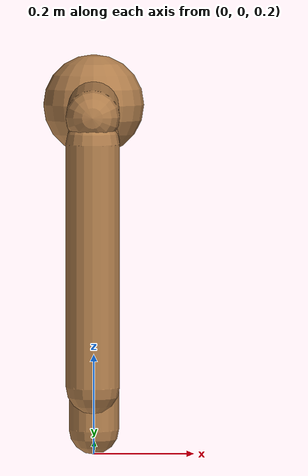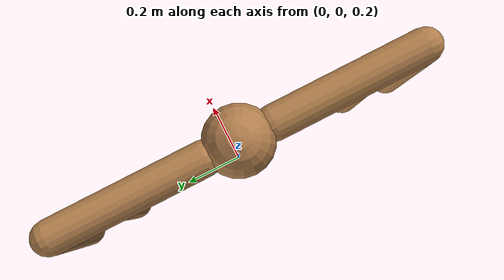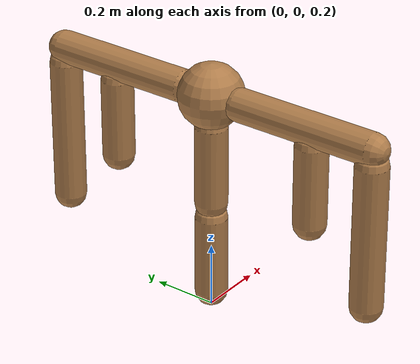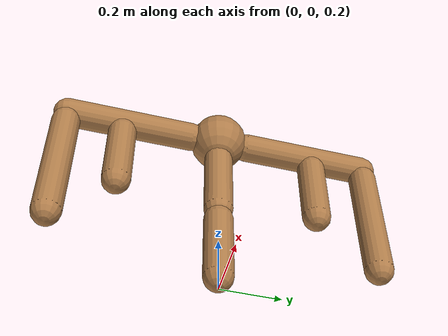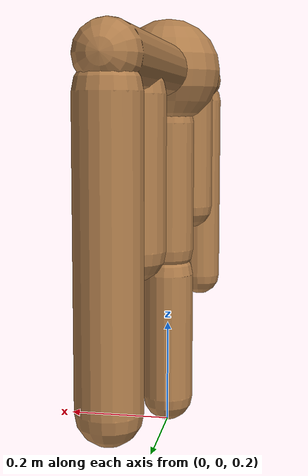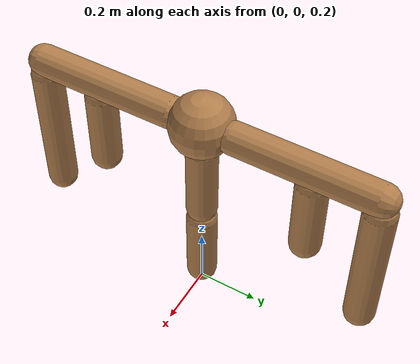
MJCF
<?xml version='1.0' encoding='UTF-8'?>
<!-- Universal Animal Template: unimal -->
<mujoco model="unimal">
  <compiler angle="degree"/>
  <size njmax="2000" nconmax="500"/>
  <option timestep=".005">
    <flag filterparent="disable"/>
  </option>
  <!-- Common defaults to make search space tractable -->
  <default>
    <!-- Define motor defaults -->
    <motor ctrlrange="-1 1" ctrllimited="true"/>
    <!-- Define joint defaults -->
    <default class="normal_joint">
      <joint type="hinge" damping="1" stiffness="1" armature="1" limited="true" range="-120 120" solimplimit="0 0.99 0.01"/>
    </default>
    <default class="walker_joint">
      <joint type="hinge" damping="0.2" stiffness="1" armature=".01" limited="true" range="-120 120" solimplimit="0 0.99 0.01"/>
    </default>
    <default class="stiff_joint">
      <joint type="hinge" damping="5" stiffness="10" armature=".01" limited="true" solimplimit="0 0.99 0.01"/>
    </default>
    <default class="free">
      <joint limited="false" damping="0" armature="0" stiffness="0"/>
    </default>
    <default class="growth_site">
      <site size="1e-6 1e-6 1e-6"/>
    </default>
    <default class="torso_growth_site">
      <site size="1e-6 1e-6 1e-6"/>
    </default>
    <default class="mirror_growth_site">
      <site size="1e-6 1e-6 1e-6"/>
    </default>
    <default class="btm_pos_site">
      <site size="1e-6 1e-6 1e-6"/>
    </default>
    <default class="box_face_site">
      <site size="1e-6 1e-6 1e-6"/>
    </default>
    <default class="imu_vel">
      <site type="box" size="0.05" rgba="1 0 0 0"/>
    </default>
    <default class="touch_site">
      <site group="3" rgba="0 0 1 .3"/>
    </default>
    <default class="food_site">
      <site material="food" size="0.15"/>
    </default>
    <!-- Define geom defaults -->
    <geom type="capsule" condim="3" friction="0.7 0.1 0.1" material="self"/>
  </default>
  <worldbody>
    <light diffuse="1 1 1" directional="true" exponent="1" pos="0 0 8" specular="0.1 0.1 0.1" dir="0 0 -1"/>
    <!-- Programatically generated xml goes here -->
    <body name="torso/0" pos="0 0 0.9">
      <joint name="root" type="free" class="free"/>
      <site name="root" class="imu_vel"/>
      <geom name="torso/0" type="sphere" size="0.1" condim="3" density="800"/>
      <camera name="side" pos="0 -7 2" xyaxes="1 0 0 0 1 2" mode="trackcom"/>
      <site name="torso/0" class="growth_site" pos="0 0 0"/>
      <site name="torso/btm_pos/0" class="btm_pos_site" pos="0 0 -0.1"/>
      <site name="torso/touch/0" class="touch_site" size="0.11"/>
      <site name="torso/horizontal_y/0" class="torso_growth_site" pos="-0.1 0 0"/>
      <body name="limb/0" pos="0.0 0.0 -0.1">
        <joint name="limby/0" type="hinge" class="normal_joint" range="-30 30" pos="0.0 0.0 0.05" axis="0.0 1.0 0.0"/>
        <geom name="limb/0" type="capsule" fromto="0.0 0.0 0.0 0.0 0.0 -0.25" size="0.05" density="700"/>
        <site name="limb/mid/0" class="growth_site" pos="0.0 0.0 -0.15"/>
        <site name="limb/btm/0" class="growth_site" pos="0.0 0.0 -0.25"/>
        <site name="limb/btm_pos/0" class="btm_pos_site" pos="0.0 0.0 -0.25"/>
        <site name="limb/touch/0" class="touch_site" size="0.060000000000000005" fromto="0.0 0.0 0.0 0.0 0.0 -0.25" type="capsule"/>
        <body name="limb/25" pos="0.0 0.0 -0.3">
          <joint name="limbx/25" type="hinge" class="normal_joint" range="-60 60" pos="0.0 0.0 0.05" axis="1.0 0.0 0.0"/>
          <joint name="limby/25" type="hinge" class="normal_joint" range="0 60" pos="0.0 0.0 0.05" axis="0.0 1.0 0.0"/>
          <geom name="limb/25" type="capsule" fromto="0.0 0.0 0.0 0.0 0.0 -0.25" size="0.05" density="700"/>
          <site name="limb/mid/25" class="growth_site" pos="0.0 0.0 -0.15"/>
          <site name="limb/btm/25" class="growth_site" pos="0.0 0.0 -0.25"/>
          <site name="limb/btm_pos/25" class="btm_pos_site" pos="0.0 0.0 -0.3"/>
          <site name="limb/touch/25" class="touch_site" size="0.060000000000000005" fromto="0.0 0.0 0.0 0.0 0.0 -0.25" type="capsule"/>
        </body>
      </body>
      <body name="limb/22" pos="0.0 0.1 0.0">
        <joint name="limby/22" type="hinge" class="normal_joint" range="-45 45" pos="0.0 -0.05 0.0" axis="0.0 0.0 1.0"/>
        <geom name="limb/22" type="capsule" fromto="0.0 0.0 0.0 0.0 0.45 0.0" size="0.05" density="700"/>
        <site name="limb/mid/22" class="mirror_growth_site" pos="0.0 0.25 0.0"/>
        <site name="limb/btm/22" class="mirror_growth_site" pos="0.0 0.45 0.0"/>
        <site name="limb/btm_pos/22" class="btm_pos_site" pos="0.0 0.5 0.0"/>
        <site name="limb/touch/22" class="touch_site" size="0.060000000000000005" fromto="0.0 0.0 0.0 0.0 0.45 0.0" type="capsule"/>
        <body name="limb/26" pos="0.0 0.25 -0.05">
          <joint name="limbx/26" type="hinge" class="normal_joint" range="-60 60" pos="0.0 0.0 0.05" axis="1.0 0.0 0.0"/>
          <geom name="limb/26" type="capsule" fromto="0.0 0.0 0.0 0.0 0.0 -0.25" size="0.05" density="700"/>
          <site name="limb/mid/26" class="mirror_growth_site" pos="0.0 0.0 -0.15"/>
          <site name="limb/btm/26" class="mirror_growth_site" pos="0.0 0.0 -0.25"/>
          <site name="limb/btm_pos/26" class="btm_pos_site" pos="0.0 0.0 -0.3"/>
          <site name="limb/touch/26" class="touch_site" size="0.060000000000000005" fromto="0.0 0.0 0.0 0.0 0.0 -0.25" type="capsule"/>
        </body>
        <body name="limb/28" pos="0.0 0.45 -0.05">
          <joint name="limby/28" type="hinge" class="normal_joint" range="-60 60" pos="0.0 0.0 0.05" axis="0.0 1.0 0.0"/>
          <geom name="limb/28" type="capsule" fromto="0.0 0.0 0.0 0.0 0.0 -0.45" size="0.05" density="700"/>
          <site name="limb/mid/28" class="mirror_growth_site" pos="0.0 0.0 -0.25"/>
          <site name="limb/btm/28" class="mirror_growth_site" pos="0.0 0.0 -0.45"/>
          <site name="limb/btm_pos/28" class="btm_pos_site" pos="0.0 0.0 -0.5"/>
          <site name="limb/touch/28" class="touch_site" size="0.060000000000000005" fromto="0.0 0.0 0.0 0.0 0.0 -0.45" type="capsule"/>
        </body>
      </body>
      <body name="limb/23" pos="0.0 -0.1 0.0">
        <joint name="limby/23" type="hinge" class="normal_joint" range="-45 45" pos="0.0 0.05 0.0" axis="-0.0 0.0 -1.0"/>
        <geom name="limb/23" type="capsule" fromto="0.0 0.0 0.0 0.0 -0.45 0.0" size="0.05" density="700"/>
        <site name="limb/mid/23" class="mirror_growth_site" pos="0.0 -0.25 0.0"/>
        <site name="limb/btm/23" class="mirror_growth_site" pos="0.0 -0.45 0.0"/>
        <site name="limb/btm_pos/23" class="btm_pos_site" pos="0.0 -0.5 0.0"/>
        <site name="limb/touch/23" class="touch_site" size="0.060000000000000005" fromto="0.0 0.0 0.0 0.0 -0.45 0.0" type="capsule"/>
        <body name="limb/27" pos="0.0 -0.25 -0.05">
          <joint name="limbx/27" type="hinge" class="normal_joint" range="-60 60" pos="0.0 0.0 0.05" axis="1.0 0.0 0.0"/>
          <geom name="limb/27" type="capsule" fromto="0.0 0.0 0.0 0.0 0.0 -0.25" size="0.05" density="700"/>
          <site name="limb/mid/27" class="mirror_growth_site" pos="0.0 0.0 -0.15"/>
          <site name="limb/btm/27" class="mirror_growth_site" pos="0.0 0.0 -0.25"/>
          <site name="limb/btm_pos/27" class="btm_pos_site" pos="0.0 0.0 -0.3"/>
          <site name="limb/touch/27" class="touch_site" size="0.060000000000000005" fromto="0.0 0.0 0.0 0.0 0.0 -0.25" type="capsule"/>
        </body>
        <body name="limb/29" pos="0.0 -0.45 -0.05">
          <joint name="limby/29" type="hinge" class="normal_joint" range="-60 60" pos="0.0 0.0 0.05" axis="0.0 1.0 0.0"/>
          <geom name="limb/29" type="capsule" fromto="0.0 0.0 0.0 0.0 0.0 -0.45" size="0.05" density="700"/>
          <site name="limb/mid/29" class="mirror_growth_site" pos="0.0 0.0 -0.25"/>
          <site name="limb/btm/29" class="mirror_growth_site" pos="0.0 0.0 -0.45"/>
          <site name="limb/btm_pos/29" class="btm_pos_site" pos="0.0 0.0 -0.5"/>
          <site name="limb/touch/29" class="touch_site" size="0.060000000000000005" fromto="0.0 0.0 0.0 0.0 0.0 -0.45" type="capsule"/>
        </body>
      </body>
    </body>
  </worldbody>
  <actuator>
    <motor joint="limby/0" gear="300" name="limby/0"/>
    <motor joint="limbx/25" gear="300" name="limbx/25"/>
    <motor joint="limby/25" gear="300" name="limby/25"/>
    <motor joint="limby/22" gear="250" name="limby/22"/>
    <motor joint="limbx/26" gear="250" name="limbx/26"/>
    <motor joint="limby/28" gear="300" name="limby/28"/>
    <motor joint="limby/23" gear="250" name="limby/23"/>
    <motor joint="limbx/27" gear="250" name="limbx/27"/>
    <motor joint="limby/29" gear="300" name="limby/29"/>
  </actuator>
  <sensor>
    <accelerometer name="torso_accel" site="root"/>
    <gyro name="torso_gyro" site="root"/>
    <velocimeter name="torso_vel" site="root"/>
    <subtreeangmom name="unimal_am" body="torso/0"/>
    <touch name="torso/0" site="torso/touch/0"/>
    <touch name="limb/0" site="limb/touch/0"/>
    <touch name="limb/25" site="limb/touch/25"/>
    <touch name="limb/22" site="limb/touch/22"/>
    <touch name="limb/26" site="limb/touch/26"/>
    <touch name="limb/28" site="limb/touch/28"/>
    <touch name="limb/23" site="limb/touch/23"/>
    <touch name="limb/27" site="limb/touch/27"/>
    <touch name="limb/29" site="limb/touch/29"/>
  </sensor>
  <!-- Add hfield assets -->
  <asset/>
  <!-- List of contacts to exclude -->
  <contact/>
  <!-- Define material, texture etc -->
  <asset>
    <material name="grid" texture="grid" texrepeat="1 1" texuniform="true" reflectance="0.1"/>
    <material name="hfield" texture="hfield" texrepeat="1 1" texuniform="true" reflectance="0.1"/>
    <material name="wall" texture="wall" texrepeat="1 1" texuniform="true" reflectance=".5"/>
    <material name="platform" texture="platform" texrepeat="1 1" texuniform="true" reflectance=".5"/>
    <material name="boundary" texture="boundary" texrepeat="1 1" texuniform="true" reflectance=".5"/>
    <material name="jump" texture="jump" texrepeat="1 1" texuniform="true" reflectance=".5"/>
    <material name="goal" rgba="1 0 0 1"/>
    <material name="food" rgba="0 0 1 1" emission="1"/>
    <material name="init_position" rgba="0 1 0 0.7"/>
    <material name="self" rgba=".7 .5 .3 1"/>
    <material name="self_invisible" rgba=".7 .5 .3 0"/>
    <material name="self_default" rgba=".7 .5 .3 1"/>
    <material name="self_highlight" rgba="0 .5 .3 1"/>
    <material name="effector" rgba=".7 .4 .2 1"/>
    <material name="effector_default" rgba=".7 .4 .2 1"/>
    <material name="effector_highlight" rgba="0 .5 .3 1"/>
    <material name="decoration" rgba=".3 .5 .7 1"/>
    <material name="eye" rgba="0 .2 1 1"/>
    <material name="target" rgba=".6 .3 .3 1"/>
    <material name="target_default" rgba=".6 .3 .3 1"/>
    <material name="target_highlight" rgba=".6 .3 .3 .4"/>
    <material name="site" rgba=".5 .5 .5 .3"/>
    <material name="ball" texture="ball"/>
  </asset>
  <asset>
    <texture name="grid" type="2d" builtin="checker" rgb1="0.4 0.4 0.4" rgb2="0.4 0.4 0.4" width="300" height="300" mark="edge" markrgb="0.2 0.2 0.2"/>
    <texture name="hfield" type="2d" builtin="checker" rgb1="0.4 0.4 0.4" rgb2="0.4 0.4 0.4" width="300" height="300" mark="edge" markrgb="0.2 0.2 0.2"/>
    <texture name="wall" type="2d" builtin="flat" rgb1="0.9 0.7 0" rgb2="0.9 0.7 0" width="300" height="300"/>
    <texture name="platform" type="2d" builtin="flat" rgb1="0.3 0 0.8" rgb2="0.3 0 0.8" width="300" height="300"/>
    <texture name="boundary" type="2d" builtin="flat" rgb1="0.3 0.3 0.3" rgb2="0.3 0.3 0.3" width="300" height="300"/>
    <texture name="jump" type="2d" builtin="flat" rgb1="0.3 0.3 0.3" rgb2="0.3 0.3 0.3" width="300" height="300"/>
    <texture name="skybox" type="skybox" builtin="gradient" rgb1="1 1 1" rgb2="0.6 0.6 0.6" width="800" height="800"/>
    <texture name="ball" builtin="checker" mark="cross" width="151" height="151" rgb1="0.1 0.1 0.1" rgb2="0.9 0.9 0.9" markrgb="1 1 1"/>
  </asset>
  <visual>
    <headlight ambient="0.6 0.6 0.6" diffuse="0.3 0.3 0.3" specular="0 0 0"/>
    <map znear=".01" shadowclip="0.5"/>
    <quality shadowsize="16384"/>
  </visual>
</mujoco>
